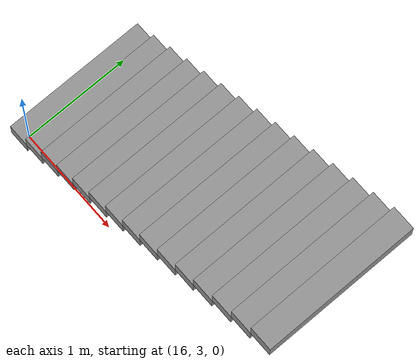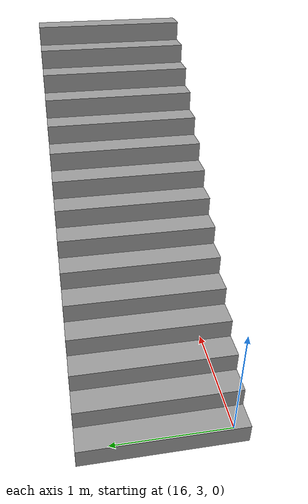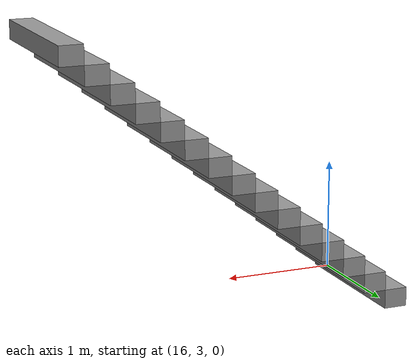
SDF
<sdf version="1.6">
 <model name="draft3">
  <pose>34.2026 -2.81154 0 0 -0 0</pose>
  <link name="Stairs_1">
   <visual name="Stairs_1_Visual_0">
    <pose>-18.2224 6.39726 0.083333 0 -0 1.5708</pose>
    <geometry><box><size>1.34385 0.206002 0.166667</size></box></geometry>
    <material>
     <script><uri>file://media/materials/scripts/gazebo.material</uri><name>Gazebo/Grey</name></script>
     <ambient>1 1 1 1</ambient>
    </material>
   </visual>
   <collision name="Stairs_1_Collision_0">
    <geometry><box><size>1.34385 0.206002 0.166667</size></box></geometry>
    <pose>-18.2224 6.39726 0.083333 0 -0 1.5708</pose>
   </collision>
   <visual name="Stairs_1_Visual_1">
    <pose>-18.0164 6.39726 0.25 0 -0 1.5708</pose>
    <geometry><box><size>1.34385 0.206002 0.166667</size></box></geometry>
    <material>
     <script><uri>file://media/materials/scripts/gazebo.material</uri><name>Gazebo/Grey</name></script>
     <ambient>1 1 1 1</ambient>
    </material>
   </visual>
   <collision name="Stairs_1_Collision_1">
    <geometry><box><size>1.34385 0.206002 0.166667</size></box></geometry>
    <pose>-18.0164 6.39726 0.25 0 -0 1.5708</pose>
   </collision>
   <visual name="Stairs_1_Visual_2">
    <pose>-17.8104 6.39726 0.416667 0 -0 1.5708</pose>
    <geometry><box><size>1.34385 0.206002 0.166667</size></box></geometry>
    <material>
     <script><uri>file://media/materials/scripts/gazebo.material</uri><name>Gazebo/Grey</name></script>
     <ambient>1 1 1 1</ambient>
    </material>
   </visual>
   <collision name="Stairs_1_Collision_2">
    <geometry><box><size>1.34385 0.206002 0.166667</size></box></geometry>
    <pose>-17.8104 6.39726 0.416667 0 -0 1.5708</pose>
   </collision>
   <visual name="Stairs_1_Visual_3">
    <pose>-17.6044 6.39726 0.583333 0 -0 1.5708</pose>
    <geometry><box><size>1.34385 0.206002 0.166667</size></box></geometry>
    <material>
     <script><uri>file://media/materials/scripts/gazebo.material</uri><name>Gazebo/Grey</name></script>
     <ambient>1 1 1 1</ambient>
    </material>
   </visual>
   <collision name="Stairs_1_Collision_3">
    <geometry><box><size>1.34385 0.206002 0.166667</size></box></geometry>
    <pose>-17.6044 6.39726 0.583333 0 -0 1.5708</pose>
   </collision>
   <visual name="Stairs_1_Visual_4">
    <pose>-17.3984 6.39726 0.75 0 -0 1.5708</pose>
    <geometry><box><size>1.34385 0.206002 0.166667</size></box></geometry>
    <material>
     <script><uri>file://media/materials/scripts/gazebo.material</uri><name>Gazebo/Grey</name></script>
     <ambient>1 1 1 1</ambient>
    </material>
   </visual>
   <collision name="Stairs_1_Collision_4">
    <geometry><box><size>1.34385 0.206002 0.166667</size></box></geometry>
    <pose>-17.3984 6.39726 0.75 0 -0 1.5708</pose>
   </collision>
   <visual name="Stairs_1_Visual_5">
    <pose>-17.1924 6.39726 0.916667 0 -0 1.5708</pose>
    <geometry><box><size>1.34385 0.206002 0.166667</size></box></geometry>
    <material>
     <script><uri>file://media/materials/scripts/gazebo.material</uri><name>Gazebo/Grey</name></script>
     <ambient>1 1 1 1</ambient>
    </material>
   </visual>
   <collision name="Stairs_1_Collision_5">
    <geometry><box><size>1.34385 0.206002 0.166667</size></box></geometry>
    <pose>-17.1924 6.39726 0.916667 0 -0 1.5708</pose>
   </collision>
   <visual name="Stairs_1_Visual_6">
    <pose>-16.9864 6.39726 1.08333 0 -0 1.5708</pose>
    <geometry><box><size>1.34385 0.206002 0.166667</size></box></geometry>
    <material>
     <script><uri>file://media/materials/scripts/gazebo.material</uri><name>Gazebo/Grey</name></script>
     <ambient>1 1 1 1</ambient>
    </material>
   </visual>
   <collision name="Stairs_1_Collision_6">
    <geometry><box><size>1.34385 0.206002 0.166667</size></box></geometry>
    <pose>-16.9864 6.39726 1.08333 0 -0 1.5708</pose>
   </collision>
   <visual name="Stairs_1_Visual_7">
    <pose>-16.7804 6.39726 1.25 0 -0 1.5708</pose>
    <geometry><box><size>1.34385 0.206002 0.166667</size></box></geometry>
    <material>
     <script><uri>file://media/materials/scripts/gazebo.material</uri><name>Gazebo/Grey</name></script>
     <ambient>1 1 1 1</ambient>
    </material>
   </visual>
   <collision name="Stairs_1_Collision_7">
    <geometry><box><size>1.34385 0.206002 0.166667</size></box></geometry>
    <pose>-16.7804 6.39726 1.25 0 -0 1.5708</pose>
   </collision>
   <visual name="Stairs_1_Visual_8">
    <pose>-16.5744 6.39726 1.41667 0 -0 1.5708</pose>
    <geometry><box><size>1.34385 0.206002 0.166667</size></box></geometry>
    <material>
     <script><uri>file://media/materials/scripts/gazebo.material</uri><name>Gazebo/Grey</name></script>
     <ambient>1 1 1 1</ambient>
    </material>
   </visual>
   <collision name="Stairs_1_Collision_8">
    <geometry><box><size>1.34385 0.206002 0.166667</size></box></geometry>
    <pose>-16.5744 6.39726 1.41667 0 -0 1.5708</pose>
   </collision>
   <visual name="Stairs_1_Visual_9">
    <pose>-16.3684 6.39726 1.58333 0 -0 1.5708</pose>
    <geometry><box><size>1.34385 0.206002 0.166667</size></box></geometry>
    <material>
     <script><uri>file://media/materials/scripts/gazebo.material</uri><name>Gazebo/Grey</name></script>
     <ambient>1 1 1 1</ambient>
    </material>
   </visual>
   <collision name="Stairs_1_Collision_9">
    <geometry><box><size>1.34385 0.206002 0.166667</size></box></geometry>
    <pose>-16.3684 6.39726 1.58333 0 -0 1.5708</pose>
   </collision>
   <visual name="Stairs_1_Visual_10">
    <pose>-16.1624 6.39726 1.75 0 -0 1.5708</pose>
    <geometry><box><size>1.34385 0.206002 0.166667</size></box></geometry>
    <material>
     <script><uri>file://media/materials/scripts/gazebo.material</uri><name>Gazebo/Grey</name></script>
     <ambient>1 1 1 1</ambient>
    </material>
   </visual>
   <collision name="Stairs_1_Collision_10">
    <geometry><box><size>1.34385 0.206002 0.166667</size></box></geometry>
    <pose>-16.1624 6.39726 1.75 0 -0 1.5708</pose>
   </collision>
   <visual name="Stairs_1_Visual_11">
    <pose>-15.9564 6.39726 1.91667 0 -0 1.5708</pose>
    <geometry><box><size>1.34385 0.206002 0.166667</size></box></geometry>
    <material>
     <script><uri>file://media/materials/scripts/gazebo.material</uri><name>Gazebo/Grey</name></script>
     <ambient>1 1 1 1</ambient>
    </material>
   </visual>
   <collision name="Stairs_1_Collision_11">
    <geometry><box><size>1.34385 0.206002 0.166667</size></box></geometry>
    <pose>-15.9564 6.39726 1.91667 0 -0 1.5708</pose>
   </collision>
   <visual name="Stairs_1_Visual_12">
    <pose>-15.7504 6.39726 2.08333 0 -0 1.5708</pose>
    <geometry><box><size>1.34385 0.206002 0.166667</size></box></geometry>
    <material>
     <script><uri>file://media/materials/scripts/gazebo.material</uri><name>Gazebo/Grey</name></script>
     <ambient>1 1 1 1</ambient>
    </material>
   </visual>
   <collision name="Stairs_1_Collision_12">
    <geometry><box><size>1.34385 0.206002 0.166667</size></box></geometry>
    <pose>-15.7504 6.39726 2.08333 0 -0 1.5708</pose>
   </collision>
   <visual name="Stairs_1_Visual_13">
    <pose>-15.5444 6.39726 2.25 0 -0 1.5708</pose>
    <geometry><box><size>1.34385 0.206002 0.166667</size></box></geometry>
    <material>
     <script><uri>file://media/materials/scripts/gazebo.material</uri><name>Gazebo/Grey</name></script>
     <ambient>1 1 1 1</ambient>
    </material>
   </visual>
   <collision name="Stairs_1_Collision_13">
    <geometry><box><size>1.34385 0.206002 0.166667</size></box></geometry>
    <pose>-15.5444 6.39726 2.25 0 -0 1.5708</pose>
   </collision>
   <visual name="Stairs_1_Visual_14">
    <pose>-15.3384 6.39726 2.41667 0 -0 1.5708</pose>
    <geometry><box><size>1.34385 0.206002 0.166667</size></box></geometry>
    <material>
     <script><uri>file://media/materials/scripts/gazebo.material</uri><name>Gazebo/Grey</name></script>
     <ambient>1 1 1 1</ambient>
    </material>
   </visual>
   <collision name="Stairs_1_Collision_14">
    <geometry><box><size>1.34385 0.206002 0.166667</size></box></geometry>
    <pose>-15.3384 6.39726 2.41667 0 -0 1.5708</pose>
   </collision>
  </link>
  <static>1</static>
 </model>
</sdf>
